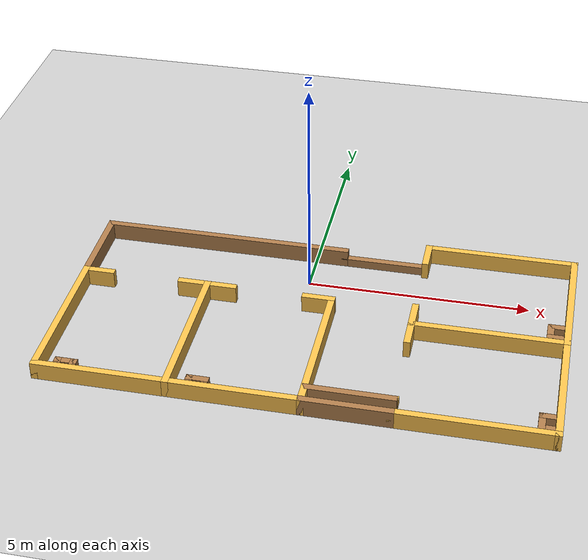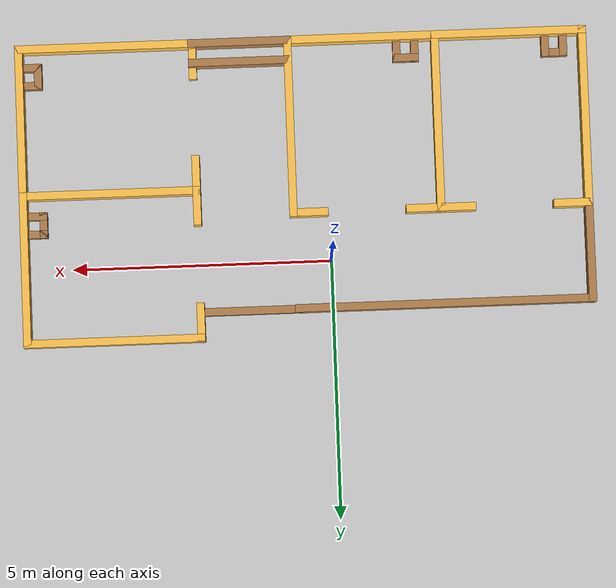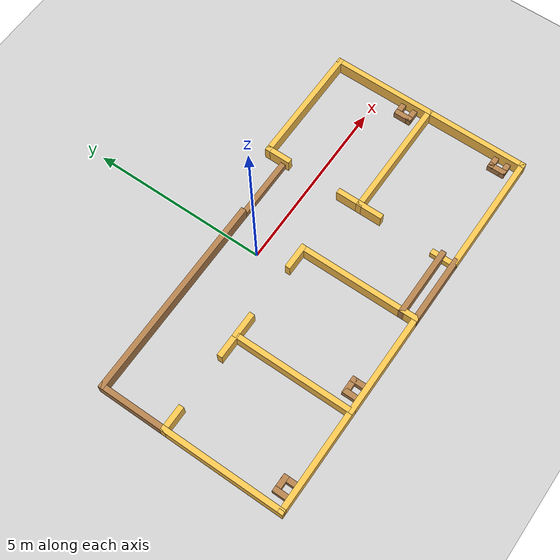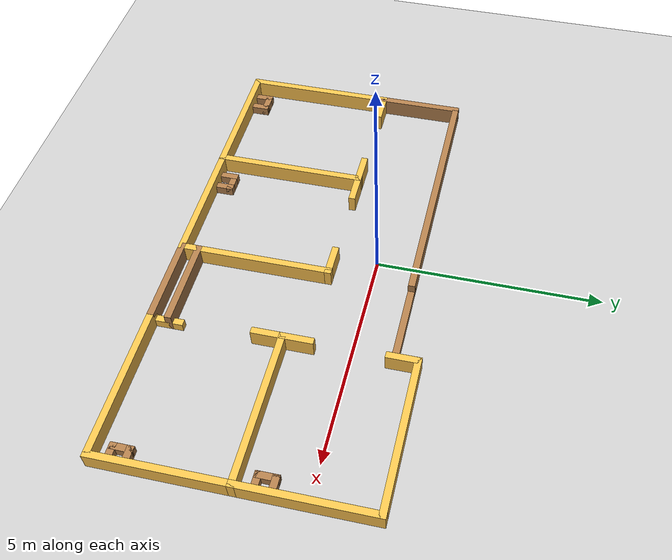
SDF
<sdf version="1.6">
 <world name="default">
  <light name="sun" type="directional">
   <pose>0 0 10 0 -0 0</pose>
   <diffuse>0.8 0.8 0.8 1</diffuse>
   <specular>0.2 0.2 0.2 1</specular>
   <attenuation>
    <range>1000</range>
    <constant>0.9</constant>
    <linear>0.01</linear>
    <quadratic>0.001</quadratic>
   </attenuation>
   <direction>-0.5 0.1 -0.9</direction>
  </light>
  <model name="ground_plane">
   <static>1</static>
   <link name="link">
    <collision name="collision">
     <geometry><plane><normal>0 0 1</normal><size>100 100</size></plane></geometry>
     <surface>
      <contact><collide_bitmask>65535</collide_bitmask></contact>
      <friction><ode><mu>100</mu><mu2>50</mu2></ode></friction>
     </surface>
    </collision>
    <visual name="visual">
     <cast_shadows>0</cast_shadows>
     <geometry><plane><normal>0 0 1</normal><size>100 100</size></plane></geometry>
     <material>
      <script><uri>file://media/materials/scripts/gazebo.material</uri><name>Gazebo/Grey</name></script>
     </material>
    </visual>
   </link>
  </model>
  <gravity>0 0 -9.8</gravity>
  <magnetic_field>6e-06 2.3e-05 -4.2e-05</magnetic_field>
  <atmosphere type="adiabatic"/>
  <physics name="default_physics" default="0" type="ode">
   <max_step_size>0.001</max_step_size>
   <real_time_factor>1</real_time_factor>
   <real_time_update_rate>1000</real_time_update_rate>
  </physics>
  <scene><ambient>0.4 0.4 0.4 1</ambient><background>0.7 0.7 0.7 1</background><shadows>1</shadows></scene>
  <audio><device>default</device></audio>
  <spherical_coordinates>
   <surface_model>EARTH_WGS84</surface_model>
   <latitude_deg>0</latitude_deg>
   <longitude_deg>0</longitude_deg>
   <elevation>0</elevation>
   <heading_deg>0</heading_deg>
  </spherical_coordinates>
  <model name="infections_hospital">
   <pose>0.45 -1.4363 0 0 -0 0</pose>
   <link name="Wall_0">
    <collision name="Wall_0_Collision">
     <geometry><box><size>3.5 0.15 0.4</size></box></geometry>
     <pose>0 0 0.2 0 -0 0</pose>
    </collision>
    <visual name="Wall_0_Visual">
     <pose>0 0 0.2 0 -0 0</pose>
     <geometry><box><size>3.5 0.15 0.4</size></box></geometry>
     <material>
      <script><uri>file://media/materials/scripts/gazebo.material</uri><name>Gazebo/Grey</name></script>
      <ambient>1 0.764706 0.305882 1</ambient>
     </material>
     <meta><layer>0</layer></meta>
    </visual>
    <pose>-5.45 -1.175 0 0 -0 -1.5708</pose>
   </link>
   <link name="Wall_1">
    <collision name="Wall_1_Collision">
     <geometry><box><size>3 0.15 0.4</size></box></geometry>
     <pose>0 0 0.2 0 -0 0</pose>
    </collision>
    <visual name="Wall_1_Visual">
     <pose>0 0 0.2 0 -0 0</pose>
     <geometry><box><size>3 0.15 0.4</size></box></geometry>
     <material>
      <script><uri>file://media/materials/scripts/gazebo.material</uri><name>Gazebo/Grey</name></script>
      <ambient>1 0.764706 0.305882 1</ambient>
     </material>
     <meta><layer>0</layer></meta>
    </visual>
    <pose>-4.025 -2.85 0 0 -0 0</pose>
   </link>
   <link name="Wall_10">
    <collision name="Wall_10_Collision">
     <geometry><box><size>0.75 0.15 0.4</size></box></geometry>
     <pose>0 0 0.2 0 -0 0</pose>
    </collision>
    <visual name="Wall_10_Visual">
     <pose>0 0 0.2 0 -0 0</pose>
     <geometry><box><size>0.75 0.15 0.4</size></box></geometry>
     <material>
      <script><uri>file://media/materials/scripts/gazebo.material</uri><name>Gazebo/Grey</name></script>
      <ambient>1 0.764706 0.305882 1</ambient>
     </material>
     <meta><layer>0</layer></meta>
    </visual>
    <pose>-0.05 0.5 0 0 -0 3.14159</pose>
   </link>
   <link name="Wall_12">
    <collision name="Wall_12_Collision">
     <geometry><box><size>0.75 0.15 0.4</size></box></geometry>
     <pose>0 0 0.2 0 -0 0</pose>
    </collision>
    <visual name="Wall_12_Visual">
     <pose>0 0 0.2 0 -0 0</pose>
     <geometry><box><size>0.75 0.15 0.4</size></box></geometry>
     <material>
      <script><uri>file://media/materials/scripts/gazebo.material</uri><name>Gazebo/Grey</name></script>
      <ambient>1 0.764706 0.305882 1</ambient>
     </material>
     <meta><layer>0</layer></meta>
    </visual>
    <pose>-2.3 0.5 0 0 -0 0</pose>
   </link>
   <link name="Wall_15">
    <collision name="Wall_15_Collision">
     <geometry><box><size>2 0.15 0.4</size></box></geometry>
     <pose>0 0 0.2 0 -0 0</pose>
    </collision>
    <visual name="Wall_15_Visual">
     <pose>0 0 0.2 0 -0 0</pose>
     <geometry><box><size>2 0.15 0.4</size></box></geometry>
     <material>
      <script><uri>file://media/materials/scripts/gazebo.material</uri><name>Gazebo/Wood</name></script>
      <ambient>1 1 1 1</ambient>
     </material>
     <meta><layer>0</layer></meta>
    </visual>
    <pose>-5.45 1.425 0 0 -0 1.5708</pose>
   </link>
   <link name="Wall_17">
    <collision name="Wall_17_Collision">
     <geometry><box><size>2 0.15 0.4</size></box></geometry>
     <pose>0 0 0.2 0 -0 0</pose>
    </collision>
    <visual name="Wall_17_Visual">
     <pose>0 0 0.2 0 -0 0</pose>
     <geometry><box><size>2 0.15 0.4</size></box></geometry>
     <material>
      <script><uri>file://media/materials/scripts/gazebo.material</uri><name>Gazebo/Wood</name></script>
      <ambient>1 1 1 1</ambient>
     </material>
     <meta><layer>0</layer></meta>
    </visual>
    <pose>1.175 -2.85 0 0 -0 0</pose>
   </link>
   <link name="Wall_19">
    <collision name="Wall_19_Collision">
     <geometry><box><size>0.75 0.15 0.2</size></box></geometry>
     <pose>0 0 0.1 0 -0 0</pose>
    </collision>
    <visual name="Wall_19_Visual">
     <pose>0 0 0.1 0 -0 0</pose>
     <geometry><box><size>0.75 0.15 0.2</size></box></geometry>
     <material>
      <script><uri>file://media/materials/scripts/gazebo.material</uri><name>Gazebo/Grey</name></script>
      <ambient>1 0.764706 0.305882 1</ambient>
     </material>
     <meta><layer>0</layer></meta>
    </visual>
    <pose>2.1 -2.55 0 0 -0 1.5708</pose>
   </link>
   <link name="Wall_2">
    <collision name="Wall_2_Collision">
     <geometry><box><size>3.5 0.15 0.4</size></box></geometry>
     <pose>0 0 0.2 0 -0 0</pose>
    </collision>
    <visual name="Wall_2_Visual">
     <pose>0 0 0.2 0 -0 0</pose>
     <geometry><box><size>3.5 0.15 0.4</size></box></geometry>
     <material>
      <script><uri>file://media/materials/scripts/gazebo.material</uri><name>Gazebo/Grey</name></script>
      <ambient>1 0.764706 0.305882 1</ambient>
     </material>
     <meta><layer>0</layer></meta>
    </visual>
    <pose>-2.6 -1.175 0 0 -0 1.5708</pose>
   </link>
   <link name="Wall_24">
    <collision name="Wall_24_Collision">
     <geometry><box><size>0.75 0.15 0.4</size></box></geometry>
     <pose>0 0 0.2 0 -0 0</pose>
    </collision>
    <visual name="Wall_24_Visual">
     <pose>0 0 0.2 0 -0 0</pose>
     <geometry><box><size>0.75 0.15 0.4</size></box></geometry>
     <material>
      <script><uri>file://media/materials/scripts/gazebo.material</uri><name>Gazebo/Grey</name></script>
      <ambient>1 0.764706 0.305882 1</ambient>
     </material>
     <meta><layer>0</layer></meta>
    </visual>
    <pose>2.1 -0.3 0 0 -0 -1.5708</pose>
   </link>
   <link name="Wall_27">
    <collision name="Wall_27_Collision">
     <geometry><box><size>3.5 0.15 0.4</size></box></geometry>
     <pose>0 0 0.2 0 -0 0</pose>
    </collision>
    <visual name="Wall_27_Visual">
     <pose>0 0 0.2 0 -0 0</pose>
     <geometry><box><size>3.5 0.15 0.4</size></box></geometry>
     <material>
      <script><uri>file://media/materials/scripts/gazebo.material</uri><name>Gazebo/Grey</name></script>
      <ambient>1 0.764706 0.305882 1</ambient>
     </material>
     <meta><layer>0</layer></meta>
    </visual>
    <pose>3.775 2.85 0 0 -0 3.14159</pose>
   </link>
   <link name="Wall_3">
    <collision name="Wall_3_Collision">
     <geometry><box><size>0.75 0.15 0.4</size></box></geometry>
     <pose>0 0 0.2 0 -0 0</pose>
    </collision>
    <visual name="Wall_3_Visual">
     <pose>0 0 0.2 0 -0 0</pose>
     <geometry><box><size>0.75 0.15 0.4</size></box></geometry>
     <material>
      <script><uri>file://media/materials/scripts/gazebo.material</uri><name>Gazebo/Grey</name></script>
      <ambient>1 0.764706 0.305882 1</ambient>
     </material>
     <meta><layer>0</layer></meta>
    </visual>
    <pose>-2.9 0.5 0 0 -0 3.14159</pose>
   </link>
   <link name="Wall_30">
    <collision name="Wall_30_Collision">
     <geometry><box><size>0.75 0.15 0.4</size></box></geometry>
     <pose>0 0 0.2 0 -0 0</pose>
    </collision>
    <visual name="Wall_30_Visual">
     <pose>0 0 0.2 0 -0 0</pose>
     <geometry><box><size>0.75 0.15 0.4</size></box></geometry>
     <material>
      <script><uri>file://media/materials/scripts/gazebo.material</uri><name>Gazebo/Grey</name></script>
      <ambient>1 0.764706 0.305882 1</ambient>
     </material>
     <meta><layer>0</layer></meta>
    </visual>
    <pose>2.1 2.55 0 0 -0 -1.5708</pose>
   </link>
   <link name="Wall_32">
    <collision name="Wall_32_Collision">
     <geometry><box><size>0.75 0.15 0.4</size></box></geometry>
     <pose>0 0 0.2 0 -0 0</pose>
    </collision>
    <visual name="Wall_32_Visual">
     <pose>0 0 0.2 0 -0 0</pose>
     <geometry><box><size>0.75 0.15 0.4</size></box></geometry>
     <material>
      <script><uri>file://media/materials/scripts/gazebo.material</uri><name>Gazebo/Grey</name></script>
      <ambient>1 0.764706 0.305882 1</ambient>
     </material>
     <meta><layer>0</layer></meta>
    </visual>
    <pose>2.1 0.3 0 0 -0 1.5708</pose>
   </link>
   <link name="Wall_34">
    <collision name="Wall_34_Collision">
     <geometry><box><size>5.81 0.15 0.4</size></box></geometry>
     <pose>0 0 0.2 0 -0 0</pose>
    </collision>
    <visual name="Wall_34_Visual">
     <pose>0 0 0.2 0 -0 0</pose>
     <geometry><box><size>5.81 0.15 0.4</size></box></geometry>
     <material>
      <script><uri>file://media/materials/scripts/gazebo.material</uri><name>Gazebo/Wood</name></script>
      <ambient>1 1 1 1</ambient>
     </material>
     <meta><layer>0</layer></meta>
    </visual>
    <pose>-2.62 2.35 0 0 -0 0</pose>
   </link>
   <link name="Wall_38">
    <collision name="Wall_38_Collision">
     <geometry><box><size>2.01 0.15 0.2</size></box></geometry>
     <pose>0 0 0.1 0 -0 0</pose>
    </collision>
    <visual name="Wall_38_Visual">
     <pose>0 0 0.1 0 -0 0</pose>
     <geometry><box><size>2.01 0.15 0.2</size></box></geometry>
     <material>
      <script><uri>file://media/materials/scripts/gazebo.material</uri><name>Gazebo/Wood</name></script>
      <ambient>1 1 1 1</ambient>
     </material>
     <meta><layer>0</layer></meta>
    </visual>
    <pose>1.14 2.35 0 0 -0 0</pose>
   </link>
   <link name="Wall_40">
    <collision name="Wall_40_Collision">
     <geometry><box><size>0.5 0.15 0.2</size></box></geometry>
     <pose>0 0 0.1 0 -0 0</pose>
    </collision>
    <visual name="Wall_40_Visual">
     <pose>0 0 0.1 0 -0 0</pose>
     <geometry><box><size>0.5 0.15 0.2</size></box></geometry>
     <material>
      <script><uri>file://media/materials/scripts/gazebo.material</uri><name>Gazebo/Wood</name></script>
      <ambient>1 1 1 1</ambient>
     </material>
     <meta><layer>0</layer></meta>
    </visual>
    <pose>-5.09 -2.625 0 0 -0 1.5708</pose>
   </link>
   <link name="Wall_41">
    <collision name="Wall_41_Collision">
     <geometry><box><size>0.5 0.15 0.2</size></box></geometry>
     <pose>0 0 0.1 0 -0 0</pose>
    </collision>
    <visual name="Wall_41_Visual">
     <pose>0 0 0.1 0 -0 0</pose>
     <geometry><box><size>0.5 0.15 0.2</size></box></geometry>
     <material>
      <script><uri>file://media/materials/scripts/gazebo.material</uri><name>Gazebo/Wood</name></script>
      <ambient>1 1 1 1</ambient>
     </material>
     <meta><layer>0</layer></meta>
    </visual>
    <pose>-4.915 -2.45 0 0 -0 0</pose>
   </link>
   <link name="Wall_42">
    <collision name="Wall_42_Collision">
     <geometry><box><size>0.5 0.15 0.2</size></box></geometry>
     <pose>0 0 0.1 0 -0 0</pose>
    </collision>
    <visual name="Wall_42_Visual">
     <pose>0 0 0.1 0 -0 0</pose>
     <geometry><box><size>0.5 0.15 0.2</size></box></geometry>
     <material>
      <script><uri>file://media/materials/scripts/gazebo.material</uri><name>Gazebo/Wood</name></script>
      <ambient>1 1 1 1</ambient>
     </material>
     <meta><layer>0</layer></meta>
    </visual>
    <pose>-4.74 -2.625 0 0 -0 -1.5708</pose>
   </link>
   <link name="Wall_44">
    <collision name="Wall_44_Collision">
     <geometry><box><size>0.5 0.15 0.2</size></box></geometry>
     <pose>0 0 0.1 0 -0 0</pose>
    </collision>
    <visual name="Wall_44_Visual">
     <pose>0 0 0.1 0 -0 0</pose>
     <geometry><box><size>0.5 0.15 0.2</size></box></geometry>
     <material>
      <script><uri>file://media/materials/scripts/gazebo.material</uri><name>Gazebo/Wood</name></script>
      <ambient>1 1 1 1</ambient>
     </material>
     <meta><layer>0</layer></meta>
    </visual>
    <pose>-2.21 -2.625 0 0 -0 1.5708</pose>
   </link>
   <link name="Wall_45">
    <collision name="Wall_45_Collision">
     <geometry><box><size>0.5 0.15 0.2</size></box></geometry>
     <pose>0 0 0.1 0 -0 0</pose>
    </collision>
    <visual name="Wall_45_Visual">
     <pose>0 0 0.1 0 -0 0</pose>
     <geometry><box><size>0.5 0.15 0.2</size></box></geometry>
     <material>
      <script><uri>file://media/materials/scripts/gazebo.material</uri><name>Gazebo/Wood</name></script>
      <ambient>1 1 1 1</ambient>
     </material>
     <meta><layer>0</layer></meta>
    </visual>
    <pose>-2.035 -2.45 0 0 -0 0</pose>
   </link>
   <link name="Wall_46">
    <collision name="Wall_46_Collision">
     <geometry><box><size>0.5 0.15 0.2</size></box></geometry>
     <pose>0 0 0.1 0 -0 0</pose>
    </collision>
    <visual name="Wall_46_Visual">
     <pose>0 0 0.1 0 -0 0</pose>
     <geometry><box><size>0.5 0.15 0.2</size></box></geometry>
     <material>
      <script><uri>file://media/materials/scripts/gazebo.material</uri><name>Gazebo/Wood</name></script>
      <ambient>1 1 1 1</ambient>
     </material>
     <meta><layer>0</layer></meta>
    </visual>
    <pose>-1.86 -2.625 0 0 -0 -1.5708</pose>
   </link>
   <link name="Wall_48">
    <collision name="Wall_48_Collision">
     <geometry><box><size>0.5 0.15 0.2</size></box></geometry>
     <pose>0 0 0.1 0 -0 0</pose>
    </collision>
    <visual name="Wall_48_Visual">
     <pose>0 0 0.1 0 -0 0</pose>
     <geometry><box><size>0.5 0.15 0.2</size></box></geometry>
     <material>
      <script><uri>file://media/materials/scripts/gazebo.material</uri><name>Gazebo/Wood</name></script>
      <ambient>1 1 1 1</ambient>
     </material>
     <meta><layer>0</layer></meta>
    </visual>
    <pose>5.275 -2.51 0 0 -0 3.14159</pose>
   </link>
   <link name="Wall_49">
    <collision name="Wall_49_Collision">
     <geometry><box><size>0.5 0.15 0.2</size></box></geometry>
     <pose>0 0 0.1 0 -0 0</pose>
    </collision>
    <visual name="Wall_49_Visual">
     <pose>0 0 0.1 0 -0 0</pose>
     <geometry><box><size>0.5 0.15 0.2</size></box></geometry>
     <material>
      <script><uri>file://media/materials/scripts/gazebo.material</uri><name>Gazebo/Wood</name></script>
      <ambient>1 1 1 1</ambient>
     </material>
     <meta><layer>0</layer></meta>
    </visual>
    <pose>5.1 -2.335 0 0 -0 1.5708</pose>
   </link>
   <link name="Wall_5">
    <collision name="Wall_5_Collision">
     <geometry><box><size>0.75 0.15 0.4</size></box></geometry>
     <pose>0 0 0.2 0 -0 0</pose>
    </collision>
    <visual name="Wall_5_Visual">
     <pose>0 0 0.2 0 -0 0</pose>
     <geometry><box><size>0.75 0.15 0.4</size></box></geometry>
     <material>
      <script><uri>file://media/materials/scripts/gazebo.material</uri><name>Gazebo/Grey</name></script>
      <ambient>1 0.764706 0.305882 1</ambient>
     </material>
     <meta><layer>0</layer></meta>
    </visual>
    <pose>-5.15 0.5 0 0 -0 0</pose>
   </link>
   <link name="Wall_50">
    <collision name="Wall_50_Collision">
     <geometry><box><size>0.5 0.15 0.2</size></box></geometry>
     <pose>0 0 0.1 0 -0 0</pose>
    </collision>
    <visual name="Wall_50_Visual">
     <pose>0 0 0.1 0 -0 0</pose>
     <geometry><box><size>0.5 0.15 0.2</size></box></geometry>
     <material>
      <script><uri>file://media/materials/scripts/gazebo.material</uri><name>Gazebo/Wood</name></script>
      <ambient>1 1 1 1</ambient>
     </material>
     <meta><layer>0</layer></meta>
    </visual>
    <pose>5.275 -2.16 0 0 -0 0</pose>
   </link>
   <link name="Wall_56">
    <collision name="Wall_56_Collision">
     <geometry><box><size>0.5 0.15 0.2</size></box></geometry>
     <pose>0 0 0.1 0 -0 0</pose>
    </collision>
    <visual name="Wall_56_Visual">
     <pose>0 0 0.1 0 -0 0</pose>
     <geometry><box><size>0.5 0.15 0.2</size></box></geometry>
     <material>
      <script><uri>file://media/materials/scripts/gazebo.material</uri><name>Gazebo/Wood</name></script>
      <ambient>1 1 1 1</ambient>
     </material>
     <meta><layer>0</layer></meta>
    </visual>
    <pose>5.255 0.38 0 0 -0 3.14159</pose>
   </link>
   <link name="Wall_57">
    <collision name="Wall_57_Collision">
     <geometry><box><size>0.5 0.15 0.2</size></box></geometry>
     <pose>0 0 0.1 0 -0 0</pose>
    </collision>
    <visual name="Wall_57_Visual">
     <pose>0 0 0.1 0 -0 0</pose>
     <geometry><box><size>0.5 0.15 0.2</size></box></geometry>
     <material>
      <script><uri>file://media/materials/scripts/gazebo.material</uri><name>Gazebo/Wood</name></script>
      <ambient>1 1 1 1</ambient>
     </material>
     <meta><layer>0</layer></meta>
    </visual>
    <pose>5.08 0.555 0 0 -0 1.5708</pose>
   </link>
   <link name="Wall_58">
    <collision name="Wall_58_Collision">
     <geometry><box><size>0.5 0.15 0.2</size></box></geometry>
     <pose>0 0 0.1 0 -0 0</pose>
    </collision>
    <visual name="Wall_58_Visual">
     <pose>0 0 0.1 0 -0 0</pose>
     <geometry><box><size>0.5 0.15 0.2</size></box></geometry>
     <material>
      <script><uri>file://media/materials/scripts/gazebo.material</uri><name>Gazebo/Wood</name></script>
      <ambient>1 1 1 1</ambient>
     </material>
     <meta><layer>0</layer></meta>
    </visual>
    <pose>5.255 0.73 0 0 -0 0</pose>
   </link>
   <link name="Wall_64">
    <collision name="Wall_64_Collision">
     <geometry><box><size>2 0.15 0.4</size></box></geometry>
     <pose>0 0 0.2 0 -0 0</pose>
    </collision>
    <visual name="Wall_64_Visual">
     <pose>0 0 0.2 0 -0 0</pose>
     <geometry><box><size>2 0.15 0.4</size></box></geometry>
     <material>
      <script><uri>file://media/materials/scripts/gazebo.material</uri><name>Gazebo/Wood</name></script>
      <ambient>1 1 1 1</ambient>
     </material>
     <meta><layer>0</layer></meta>
    </visual>
    <pose>1.175 -2.47 0 0 -0 0</pose>
   </link>
   <link name="Wall_66">
    <collision name="Wall_66_Collision">
     <geometry><box><size>3 0.15 0.4</size></box></geometry>
     <pose>0 0 0.2 0 -0 0</pose>
    </collision>
    <visual name="Wall_66_Visual">
     <pose>0 0 0.2 0 -0 0</pose>
     <geometry><box><size>3 0.15 0.4</size></box></geometry>
     <material>
      <script><uri>file://media/materials/scripts/gazebo.material</uri><name>Gazebo/Grey</name></script>
      <ambient>1 0.764706 0.305882 1</ambient>
     </material>
     <meta><layer>0</layer></meta>
    </visual>
    <pose>5.45 1.425 0 0 -0 -1.5708</pose>
   </link>
   <link name="Wall_67">
    <collision name="Wall_67_Collision">
     <geometry><box><size>3.5 0.15 0.4</size></box></geometry>
     <pose>0 0 0.2 0 -0 0</pose>
    </collision>
    <visual name="Wall_67_Visual">
     <pose>0 0 0.2 0 -0 0</pose>
     <geometry><box><size>3.5 0.15 0.4</size></box></geometry>
     <material>
      <script><uri>file://media/materials/scripts/gazebo.material</uri><name>Gazebo/Grey</name></script>
      <ambient>1 0.764706 0.305882 1</ambient>
     </material>
     <meta><layer>0</layer></meta>
    </visual>
    <pose>3.775 0 0 0 -0 3.14159</pose>
   </link>
   <link name="Wall_69">
    <collision name="Wall_69_Collision">
     <geometry><box><size>3.5 0.15 0.4</size></box></geometry>
     <pose>0 0 0.2 0 -0 0</pose>
    </collision>
    <visual name="Wall_69_Visual">
     <pose>0 0 0.2 0 -0 0</pose>
     <geometry><box><size>3.5 0.15 0.4</size></box></geometry>
     <material>
      <script><uri>file://media/materials/scripts/gazebo.material</uri><name>Gazebo/Grey</name></script>
      <ambient>1 0.764706 0.305882 1</ambient>
     </material>
     <meta><layer>0</layer></meta>
    </visual>
    <pose>3.775 -2.85 0 0 -0 0</pose>
   </link>
   <link name="Wall_7">
    <collision name="Wall_7_Collision">
     <geometry><box><size>3 0.15 0.4</size></box></geometry>
     <pose>0 0 0.2 0 -0 0</pose>
    </collision>
    <visual name="Wall_7_Visual">
     <pose>0 0 0.2 0 -0 0</pose>
     <geometry><box><size>3 0.15 0.4</size></box></geometry>
     <material>
      <script><uri>file://media/materials/scripts/gazebo.material</uri><name>Gazebo/Grey</name></script>
      <ambient>1 0.764706 0.305882 1</ambient>
     </material>
     <meta><layer>0</layer></meta>
    </visual>
    <pose>-1.175 -2.85 0 0 -0 0</pose>
   </link>
   <link name="Wall_70">
    <collision name="Wall_70_Collision">
     <geometry><box><size>3 0.15 0.4</size></box></geometry>
     <pose>0 0 0.2 0 -0 0</pose>
    </collision>
    <visual name="Wall_70_Visual">
     <pose>0 0 0.2 0 -0 0</pose>
     <geometry><box><size>3 0.15 0.4</size></box></geometry>
     <material>
      <script><uri>file://media/materials/scripts/gazebo.material</uri><name>Gazebo/Grey</name></script>
      <ambient>1 0.764706 0.305882 1</ambient>
     </material>
     <meta><layer>0</layer></meta>
    </visual>
    <pose>5.45 -1.425 0 0 -0 1.5708</pose>
   </link>
   <link name="Wall_9">
    <collision name="Wall_9_Collision">
     <geometry><box><size>3.5 0.15 0.4</size></box></geometry>
     <pose>0 0 0.2 0 -0 0</pose>
    </collision>
    <visual name="Wall_9_Visual">
     <pose>0 0 0.2 0 -0 0</pose>
     <geometry><box><size>3.5 0.15 0.4</size></box></geometry>
     <material>
      <script><uri>file://media/materials/scripts/gazebo.material</uri><name>Gazebo/Grey</name></script>
      <ambient>1 0.764706 0.305882 1</ambient>
     </material>
     <meta><layer>0</layer></meta>
    </visual>
    <pose>0.25 -1.175 0 0 -0 1.5708</pose>
   </link>
   <static>1</static>
  </model>
 </world>
</sdf>
